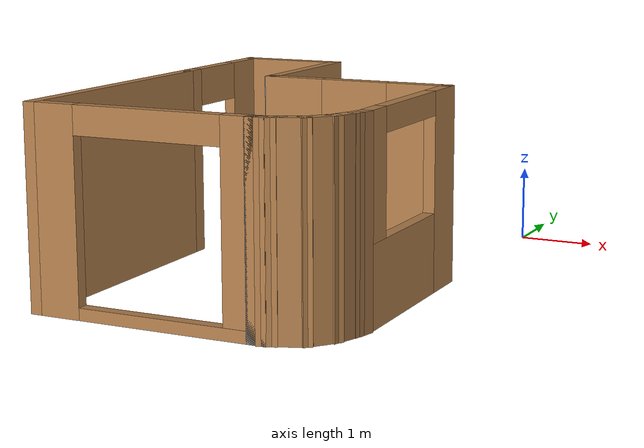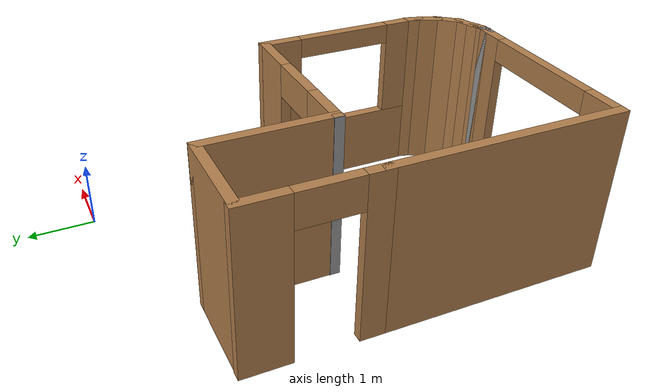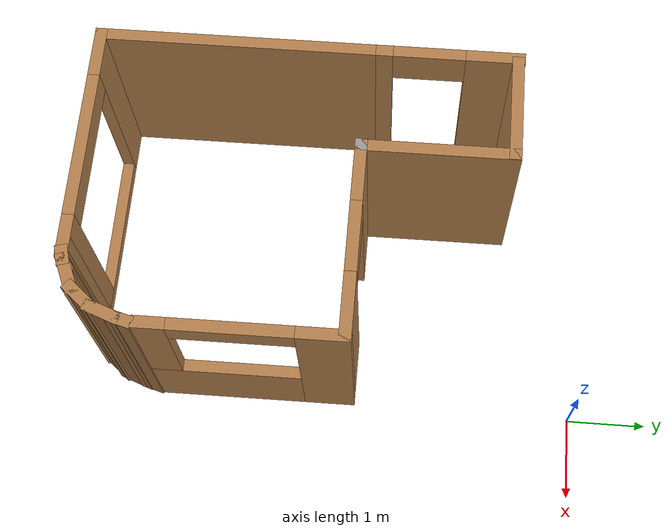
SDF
<?xml version='1.0'?>
<sdf version='1.7'>
  <model name='hardwareroom'>
    <pose>-1.96307 -3.13616 0 0 -0 0</pose>
    <link name='Wall_1'>
      <collision name='Wall_1_Collision'>
        <geometry>
          <box>
            <size>1.42085 0.15 2.5</size>
          </box>
        </geometry>
        <pose>0 0 1.25 0 -0 0</pose>
      </collision>
      <visual name='Wall_1_Visual'>
        <pose>0 0 1.25 0 -0 0</pose>
        <geometry>
          <box>
            <size>1.42085 0.15 2.5</size>
          </box>
        </geometry>
        <material>
          <script>
            <uri>file://media/materials/scripts/gazebo.material</uri>
            <name>Gazebo/Wood</name>
          </script>
          <ambient>1 1 1 1</ambient>
        </material>
        <meta>
          <layer>0</layer>
        </meta>
      </visual>
      <pose>-1.20151 2.14616 0 0 -0 0</pose>
    </link>
    <link name='Wall_18'>
      <collision name='Wall_18_Collision'>
        <geometry>
          <box>
            <size>0.15 0.15 2.5</size>
          </box>
        </geometry>
        <pose>0 0 1.25 0 -0 0</pose>
      </collision>
      <visual name='Wall_18_Visual'>
        <pose>0 0 1.25 0 -0 0</pose>
        <geometry>
          <box>
            <size>0.15 0.15 2.5</size>
          </box>
        </geometry>
        <material>
          <script>
            <uri>file://media/materials/scripts/gazebo.material</uri>
            <name>Gazebo/Grey</name>
          </script>
          <ambient>1 1 1 1</ambient>
        </material>
        <meta>
          <layer>0</layer>
        </meta>
      </visual>
      <pose>-0.566086 0.296158 0 0 -0 0</pose>
    </link>
    <link name='Wall_2'>
      <collision name='Wall_2_Collision'>
        <geometry>
          <box>
            <size>2 0.15 2.5</size>
          </box>
        </geometry>
        <pose>0 0 1.25 0 -0 0</pose>
      </collision>
      <visual name='Wall_2_Visual'>
        <pose>0 0 1.25 0 -0 0</pose>
        <geometry>
          <box>
            <size>2 0.15 2.5</size>
          </box>
        </geometry>
        <material>
          <script>
            <uri>file://media/materials/scripts/gazebo.material</uri>
            <name>Gazebo/Wood</name>
          </script>
          <ambient>1 1 1 1</ambient>
        </material>
        <meta>
          <layer>0</layer>
        </meta>
      </visual>
      <pose>-0.557291 1.22116 0 0 -0 -1.5708</pose>
    </link>
    <link name='Wall_20'>
      <pose>0.652888 0.296158 0 0 -0 0</pose>
      <visual name='Wall_20_Visual_0'>
        <pose>-0.879506 0 1.25 0 -0 0</pose>
        <geometry>
          <box>
            <size>0.811346 0.15 2.5</size>
          </box>
        </geometry>
        <material>
          <script>
            <uri>file://media/materials/scripts/gazebo.material</uri>
            <name>Gazebo/Wood</name>
          </script>
          <ambient>1 1 1 1</ambient>
        </material>
        <meta>
          <layer>0</layer>
        </meta>
      </visual>
      <collision name='Wall_20_Collision_0'>
        <geometry>
          <box>
            <size>0.811346 0.15 2.5</size>
          </box>
        </geometry>
        <pose>-0.879506 0 1.25 0 -0 0</pose>
      </collision>
      <visual name='Wall_20_Visual_1'>
        <pose>0.855673 0 1.25 0 -0 0</pose>
        <geometry>
          <box>
            <size>0.859012 0.15 2.5</size>
          </box>
        </geometry>
        <material>
          <script>
            <uri>file://media/materials/scripts/gazebo.material</uri>
            <name>Gazebo/Wood</name>
          </script>
          <ambient>1 1 1 1</ambient>
        </material>
        <meta>
          <layer>0</layer>
        </meta>
      </visual>
      <collision name='Wall_20_Collision_1'>
        <geometry>
          <box>
            <size>0.859012 0.15 2.5</size>
          </box>
        </geometry>
        <pose>0.855673 0 1.25 0 -0 0</pose>
      </collision>
      <visual name='Wall_20_Visual_2'>
        <pose>-0.023833 0 2.25 0 -0 0</pose>
        <geometry>
          <box>
            <size>0.9 0.15 0.5</size>
          </box>
        </geometry>
        <material>
          <script>
            <uri>file://media/materials/scripts/gazebo.material</uri>
            <name>Gazebo/Wood</name>
          </script>
          <ambient>1 1 1 1</ambient>
        </material>
        <meta>
          <layer>0</layer>
        </meta>
      </visual>
      <collision name='Wall_20_Collision_2'>
        <geometry>
          <box>
            <size>0.9 0.15 0.5</size>
          </box>
        </geometry>
        <pose>-0.023833 0 2.25 0 -0 0</pose>
      </collision>
    </link>
    <link name='Wall_22'>
      <collision name='Wall_22_Collision'>
        <geometry>
          <box>
            <size>3.5 0.15 2.5</size>
          </box>
        </geometry>
        <pose>0 0 1.25 0 -0 0</pose>
      </collision>
      <visual name='Wall_22_Visual'>
        <pose>0 0 1.25 0 -0 0</pose>
        <geometry>
          <box>
            <size>3.5 0.15 2.5</size>
          </box>
        </geometry>
        <material>
          <script>
            <uri>file://media/materials/scripts/gazebo.material</uri>
            <name>Gazebo/Wood</name>
          </script>
          <ambient>1 1 1 1</ambient>
        </material>
        <meta>
          <layer>0</layer>
        </meta>
      </visual>
      <pose>-1.88807 -1.3693 0 0 -0 -1.5708</pose>
    </link>
    <link name='Wall_23'>
      <pose>-0.463066 -3.0443 0 0 -0 0</pose>
      <visual name='Wall_23_Visual_0'>
        <pose>-1.16393 0 1.25 0 -0 0</pose>
        <geometry>
          <box>
            <size>0.672133 0.15 2.5</size>
          </box>
        </geometry>
        <material>
          <script>
            <uri>file://media/materials/scripts/gazebo.material</uri>
            <name>Gazebo/Wood</name>
          </script>
          <ambient>1 1 1 1</ambient>
        </material>
        <meta>
          <layer>0</layer>
        </meta>
      </visual>
      <collision name='Wall_23_Collision_0'>
        <geometry>
          <box>
            <size>0.672133 0.15 2.5</size>
          </box>
        </geometry>
        <pose>-1.16393 0 1.25 0 -0 0</pose>
      </collision>
      <visual name='Wall_23_Visual_1'>
        <pose>0.336066 0 0.075 0 -0 0</pose>
        <geometry>
          <box>
            <size>2.32787 0.15 0.15</size>
          </box>
        </geometry>
        <material>
          <script>
            <uri>file://media/materials/scripts/gazebo.material</uri>
            <name>Gazebo/Wood</name>
          </script>
          <ambient>1 1 1 1</ambient>
        </material>
        <meta>
          <layer>0</layer>
        </meta>
      </visual>
      <collision name='Wall_23_Collision_1'>
        <geometry>
          <box>
            <size>2.32787 0.15 0.15</size>
          </box>
        </geometry>
        <pose>0.336066 0 0.075 0 -0 0</pose>
      </collision>
      <visual name='Wall_23_Visual_2'>
        <pose>1.28107 0 1.325 0 -0 0</pose>
        <geometry>
          <box>
            <size>0.437867 0.15 2.35</size>
          </box>
        </geometry>
        <material>
          <script>
            <uri>file://media/materials/scripts/gazebo.material</uri>
            <name>Gazebo/Wood</name>
          </script>
          <ambient>1 1 1 1</ambient>
        </material>
        <meta>
          <layer>0</layer>
        </meta>
      </visual>
      <collision name='Wall_23_Collision_2'>
        <geometry>
          <box>
            <size>0.437867 0.15 2.35</size>
          </box>
        </geometry>
        <pose>1.28107 0 1.325 0 -0 0</pose>
      </collision>
      <visual name='Wall_23_Visual_3'>
        <pose>0.117133 0 2.325 0 -0 0</pose>
        <geometry>
          <box>
            <size>1.89 0.15 0.35</size>
          </box>
        </geometry>
        <material>
          <script>
            <uri>file://media/materials/scripts/gazebo.material</uri>
            <name>Gazebo/Wood</name>
          </script>
          <ambient>1 1 1 1</ambient>
        </material>
        <meta>
          <layer>0</layer>
        </meta>
      </visual>
      <collision name='Wall_23_Collision_3'>
        <geometry>
          <box>
            <size>1.89 0.15 0.35</size>
          </box>
        </geometry>
        <pose>0.117133 0 2.325 0 -0 0</pose>
      </collision>
    </link>
    <link name='Wall_26'>
      <collision name='Wall_26_Collision'>
        <geometry>
          <box>
            <size>0.25 0.15 2.5</size>
          </box>
        </geometry>
        <pose>0 0 1.25 0 -0 0</pose>
      </collision>
      <visual name='Wall_26_Visual'>
        <pose>0 0 1.25 0 -0 0</pose>
        <geometry>
          <box>
            <size>0.25 0.15 2.5</size>
          </box>
        </geometry>
        <material>
          <script>
            <uri>file://media/materials/scripts/gazebo.material</uri>
            <name>Gazebo/Grey</name>
          </script>
          <ambient>1 1 1 1</ambient>
        </material>
        <meta>
          <layer>0</layer>
        </meta>
      </visual>
      <pose>1.01193 -3.0443 0 0 -0 0</pose>
    </link>
    <link name='Wall_27'>
      <collision name='Wall_27_Collision'>
        <geometry>
          <box>
            <size>0.25 0.15 2.5</size>
          </box>
        </geometry>
        <pose>0 0 1.25 0 -0 0</pose>
      </collision>
      <visual name='Wall_27_Visual'>
        <pose>0 0 1.25 0 -0 0</pose>
        <geometry>
          <box>
            <size>0.25 0.15 2.5</size>
          </box>
        </geometry>
        <material>
          <script>
            <uri>file://media/materials/scripts/gazebo.material</uri>
            <name>Gazebo/Wood</name>
          </script>
          <ambient>1 1 1 1</ambient>
        </material>
        <meta>
          <layer>0</layer>
        </meta>
      </visual>
      <pose>1.01193 -3.0443 0 0 -0 3.14159</pose>
    </link>
    <link name='Wall_29'>
      <collision name='Wall_29_Collision'>
        <geometry>
          <box>
            <size>0.25 0.15 2.5</size>
          </box>
        </geometry>
        <pose>0 0 1.25 0 -0 0</pose>
      </collision>
      <visual name='Wall_29_Visual'>
        <pose>0 0 1.25 0 -0 0</pose>
        <geometry>
          <box>
            <size>0.25 0.15 2.5</size>
          </box>
        </geometry>
        <material>
          <script>
            <uri>file://media/materials/scripts/gazebo.material</uri>
            <name>Gazebo/Wood</name>
          </script>
          <ambient>1 1 1 1</ambient>
        </material>
        <meta>
          <layer>0</layer>
        </meta>
      </visual>
      <pose>1.11023 -3.03136 0 0 -0 0.261799</pose>
    </link>
    <link name='Wall_33'>
      <collision name='Wall_33_Collision'>
        <geometry>
          <box>
            <size>0.25 0.15 2.5</size>
          </box>
        </geometry>
        <pose>0 0 1.25 0 -0 0</pose>
      </collision>
      <visual name='Wall_33_Visual'>
        <pose>0 0 1.25 0 -0 0</pose>
        <geometry>
          <box>
            <size>0.25 0.15 2.5</size>
          </box>
        </geometry>
        <material>
          <script>
            <uri>file://media/materials/scripts/gazebo.material</uri>
            <name>Gazebo/Wood</name>
          </script>
          <ambient>1 1 1 1</ambient>
        </material>
        <meta>
          <layer>0</layer>
        </meta>
      </visual>
      <pose>1.20183 -2.99342 0 0 -0 0.523599</pose>
    </link>
    <link name='Wall_37'>
      <collision name='Wall_37_Collision'>
        <geometry>
          <box>
            <size>0.522094 0.15 2.5</size>
          </box>
        </geometry>
        <pose>0 0 1.25 0 -0 0</pose>
      </collision>
      <visual name='Wall_37_Visual'>
        <pose>0 0 1.25 0 -0 0</pose>
        <geometry>
          <box>
            <size>0.522094 0.15 2.5</size>
          </box>
        </geometry>
        <material>
          <script>
            <uri>file://media/materials/scripts/gazebo.material</uri>
            <name>Gazebo/Wood</name>
          </script>
          <ambient>1 1 1 1</ambient>
        </material>
        <meta>
          <layer>0</layer>
        </meta>
      </visual>
      <pose>1.3296 -2.94529 0 0 -0 -2.73763</pose>
    </link>
    <link name='Wall_39'>
      <collision name='Wall_39_Collision'>
        <geometry>
          <box>
            <size>0.484614 0.15 2.5</size>
          </box>
        </geometry>
        <pose>0 0 1.25 0 -0 0</pose>
      </collision>
      <visual name='Wall_39_Visual'>
        <pose>0 0 1.25 0 -0 0</pose>
        <geometry>
          <box>
            <size>0.484614 0.15 2.5</size>
          </box>
        </geometry>
        <material>
          <script>
            <uri>file://media/materials/scripts/gazebo.material</uri>
            <name>Gazebo/Wood</name>
          </script>
          <ambient>1 1 1 1</ambient>
        </material>
        <meta>
          <layer>0</layer>
        </meta>
      </visual>
      <pose>1.60767 -2.74354 0 0 -0 -2.26471</pose>
    </link>
    <link name='Wall_41'>
      <collision name='Wall_41_Collision'>
        <geometry>
          <box>
            <size>0.457143 0.15 2.5</size>
          </box>
        </geometry>
        <pose>0 0 1.25 0 -0 0</pose>
      </collision>
      <visual name='Wall_41_Visual'>
        <pose>0 0 1.25 0 -0 0</pose>
        <geometry>
          <box>
            <size>0.457143 0.15 2.5</size>
          </box>
        </geometry>
        <material>
          <script>
            <uri>file://media/materials/scripts/gazebo.material</uri>
            <name>Gazebo/Wood</name>
          </script>
          <ambient>1 1 1 1</ambient>
        </material>
        <meta>
          <layer>0</layer>
        </meta>
      </visual>
      <pose>1.76871 -2.47118 0 0 -0 -1.93039</pose>
    </link>
    <link name='Wall_45'>
      <collision name='Wall_45_Collision'>
        <geometry>
          <box>
            <size>0.302406 0.15 2.5</size>
          </box>
        </geometry>
        <pose>0 0 1.25 0 -0 0</pose>
      </collision>
      <visual name='Wall_45_Visual'>
        <pose>0 0 1.25 0 -0 0</pose>
        <geometry>
          <box>
            <size>0.302406 0.15 2.5</size>
          </box>
        </geometry>
        <material>
          <script>
            <uri>file://media/materials/scripts/gazebo.material</uri>
            <name>Gazebo/Wood</name>
          </script>
          <ambient>1 1 1 1</ambient>
        </material>
        <meta>
          <layer>0</layer>
        </meta>
      </visual>
      <pose>1.84289 -2.25393 0 0 -0 1.30344</pose>
    </link>
    <link name='Wall_47'>
      <pose>-1.88807 1.2307 0 0 -0 1.5708</pose>
      <visual name='Wall_47_Visual_0'>
        <pose>-0.817654 0 1.25 0 -0 0</pose>
        <geometry>
          <box>
            <size>0.364692 0.15 2.5</size>
          </box>
        </geometry>
        <material>
          <script>
            <uri>file://media/materials/scripts/gazebo.material</uri>
            <name>Gazebo/Wood</name>
          </script>
          <ambient>1 1 1 1</ambient>
        </material>
        <meta>
          <layer>0</layer>
        </meta>
      </visual>
      <collision name='Wall_47_Collision_0'>
        <geometry>
          <box>
            <size>0.364692 0.15 2.5</size>
          </box>
        </geometry>
        <pose>-0.817654 0 1.25 0 -0 0</pose>
      </collision>
      <visual name='Wall_47_Visual_1'>
        <pose>0.632346 0 1.25 0 -0 0</pose>
        <geometry>
          <box>
            <size>0.735308 0.15 2.5</size>
          </box>
        </geometry>
        <material>
          <script>
            <uri>file://media/materials/scripts/gazebo.material</uri>
            <name>Gazebo/Wood</name>
          </script>
          <ambient>1 1 1 1</ambient>
        </material>
        <meta>
          <layer>0</layer>
        </meta>
      </visual>
      <collision name='Wall_47_Collision_1'>
        <geometry>
          <box>
            <size>0.735308 0.15 2.5</size>
          </box>
        </geometry>
        <pose>0.632346 0 1.25 0 -0 0</pose>
      </collision>
      <visual name='Wall_47_Visual_2'>
        <pose>-0.185308 0 2.25 0 -0 0</pose>
        <geometry>
          <box>
            <size>0.9 0.15 0.5</size>
          </box>
        </geometry>
        <material>
          <script>
            <uri>file://media/materials/scripts/gazebo.material</uri>
            <name>Gazebo/Wood</name>
          </script>
          <ambient>1 1 1 1</ambient>
        </material>
        <meta>
          <layer>0</layer>
        </meta>
      </visual>
      <collision name='Wall_47_Collision_2'>
        <geometry>
          <box>
            <size>0.9 0.15 0.5</size>
          </box>
        </geometry>
        <pose>-0.185308 0 2.25 0 -0 0</pose>
      </collision>
    </link>
    <link name='Wall_7'>
      <pose>1.86307 -0.878842 0 0 -0 -1.5708</pose>
      <visual name='Wall_7_Visual_0'>
        <pose>-0.930426 0 1.25 0 -0 0</pose>
        <geometry>
          <box>
            <size>0.639757 0.15 2.5</size>
          </box>
        </geometry>
        <material>
          <script>
            <uri>file://media/materials/scripts/gazebo.material</uri>
            <name>Gazebo/Wood</name>
          </script>
          <ambient>1 1 1 1</ambient>
        </material>
        <meta>
          <layer>0</layer>
        </meta>
      </visual>
      <collision name='Wall_7_Collision_0'>
        <geometry>
          <box>
            <size>0.639757 0.15 2.5</size>
          </box>
        </geometry>
        <pose>-0.930426 0 1.25 0 -0 0</pose>
      </collision>
      <visual name='Wall_7_Visual_1'>
        <pose>0.319878 0 0.5 0 -0 0</pose>
        <geometry>
          <box>
            <size>1.86085 0.15 1</size>
          </box>
        </geometry>
        <material>
          <script>
            <uri>file://media/materials/scripts/gazebo.material</uri>
            <name>Gazebo/Wood</name>
          </script>
          <ambient>1 1 1 1</ambient>
        </material>
        <meta>
          <layer>0</layer>
        </meta>
      </visual>
      <collision name='Wall_7_Collision_1'>
        <geometry>
          <box>
            <size>1.86085 0.15 1</size>
          </box>
        </geometry>
        <pose>0.319878 0 0.5 0 -0 0</pose>
      </collision>
      <visual name='Wall_7_Visual_2'>
        <pose>1.05338 0 1.75 0 -0 0</pose>
        <geometry>
          <box>
            <size>0.393852 0.15 1.5</size>
          </box>
        </geometry>
        <material>
          <script>
            <uri>file://media/materials/scripts/gazebo.material</uri>
            <name>Gazebo/Wood</name>
          </script>
          <ambient>1 1 1 1</ambient>
        </material>
        <meta>
          <layer>0</layer>
        </meta>
      </visual>
      <collision name='Wall_7_Collision_2'>
        <geometry>
          <box>
            <size>0.393852 0.15 1.5</size>
          </box>
        </geometry>
        <pose>1.05338 0 1.75 0 -0 0</pose>
      </collision>
      <visual name='Wall_7_Visual_3'>
        <pose>0.122952 0 2.35 0 -0 0</pose>
        <geometry>
          <box>
            <size>1.467 0.15 0.3</size>
          </box>
        </geometry>
        <material>
          <script>
            <uri>file://media/materials/scripts/gazebo.material</uri>
            <name>Gazebo/Wood</name>
          </script>
          <ambient>1 1 1 1</ambient>
        </material>
        <meta>
          <layer>0</layer>
        </meta>
      </visual>
      <collision name='Wall_7_Collision_3'>
        <geometry>
          <box>
            <size>1.467 0.15 0.3</size>
          </box>
        </geometry>
        <pose>0.122952 0 2.35 0 -0 0</pose>
      </collision>
    </link>
    <static>1</static>
  </model>
</sdf>
